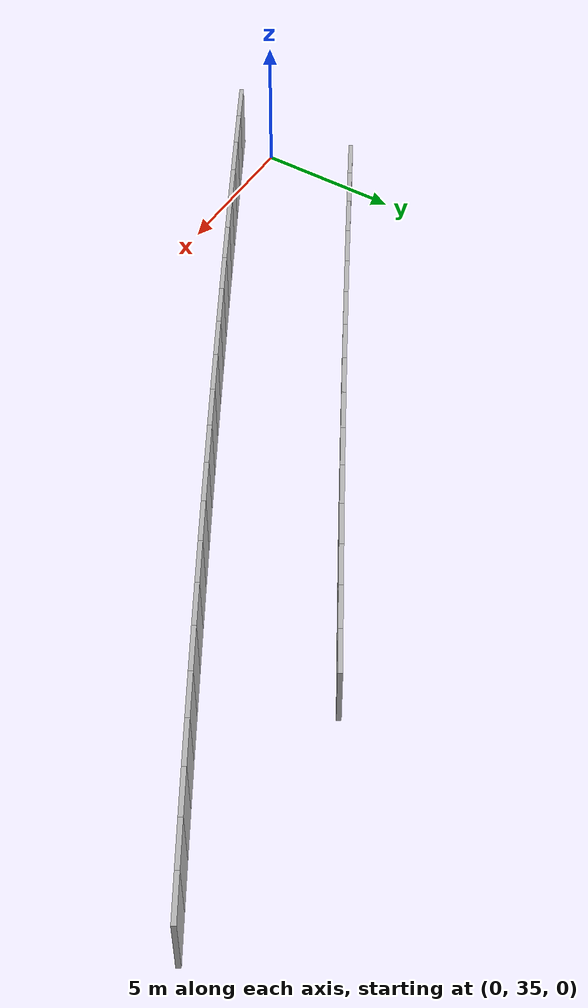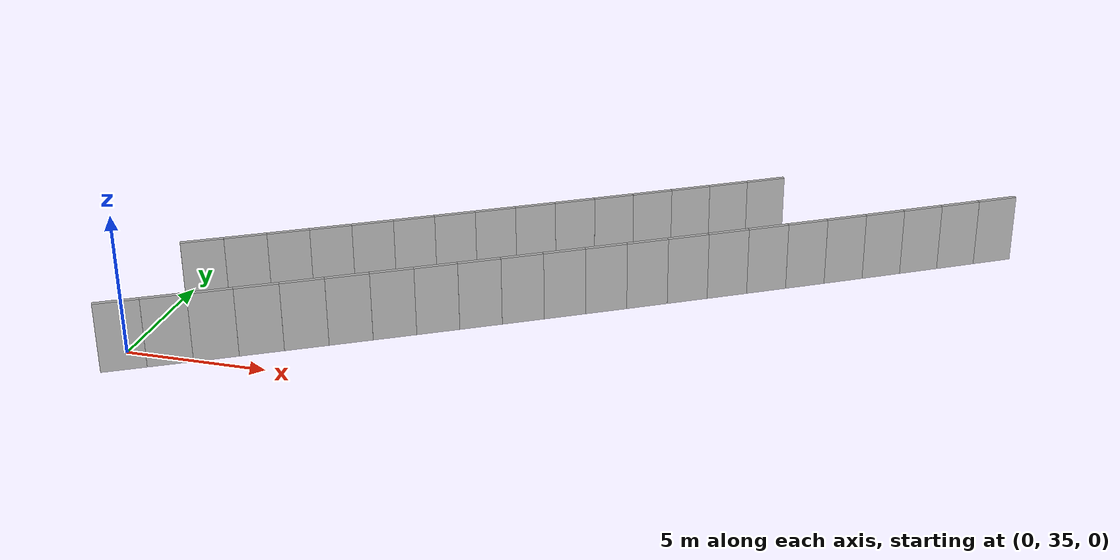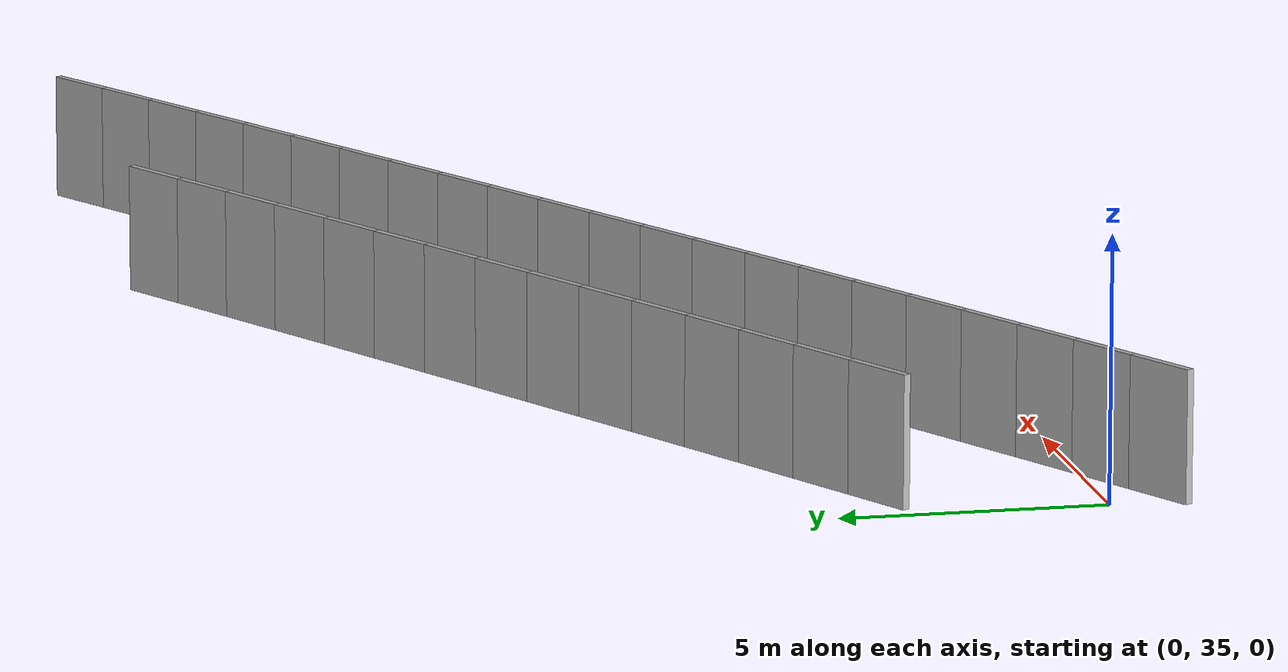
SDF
<?xml version="1.0" ?>
<sdf version="1.6">
  <model name="sps_3505">
    <pose frame="">0 0 0 0 -0 0</pose>
    <static>1</static>
    <self_collide>0</self_collide>
    <allow_auto_disable>0</allow_auto_disable>
    <link name="Wall3986">
      <kinematic>0</kinematic>
      <gravity>1</gravity>
      <self_collide>0</self_collide>
      <collision name="collision">
        <geometry>
          <box>
            <size>1.49667 0.15 2.5</size>
          </box>
        </geometry>
        <pose frame="">0 0 0 0 -0 0</pose>
      </collision>
      <visual name="visual">
        <geometry>
          <box>
            <size>1.49667 0.15 2.5</size>
          </box>
        </geometry>
        <pose frame="">0 0 0 0 -0 0</pose>
        <cast_shadows>1</cast_shadows>
        <transparency>0.0</transparency>
      </visual>
      <pose frame="">1.04174 39.0217 1.25 0 -0 0.509495</pose>
    </link>
    <link name="Wall3987">
      <kinematic>0</kinematic>
      <gravity>1</gravity>
      <self_collide>0</self_collide>
      <collision name="collision">
        <geometry>
          <box>
            <size>1.49648 0.15 2.5</size>
          </box>
        </geometry>
        <pose frame="">0 0 0 0 -0 0</pose>
      </collision>
      <visual name="visual">
        <geometry>
          <box>
            <size>1.49648 0.15 2.5</size>
          </box>
        </geometry>
        <pose frame="">0 0 0 0 -0 0</pose>
        <cast_shadows>1</cast_shadows>
        <transparency>0.0</transparency>
      </visual>
      <pose frame="">2.34765 39.7527 1.25 0 -0 0.511108</pose>
    </link>
    <link name="Wall3988">
      <kinematic>0</kinematic>
      <gravity>1</gravity>
      <self_collide>0</self_collide>
      <collision name="collision">
        <geometry>
          <box>
            <size>1.49656 0.15 2.5</size>
          </box>
        </geometry>
        <pose frame="">0 0 0 0 -0 0</pose>
      </collision>
      <visual name="visual">
        <geometry>
          <box>
            <size>1.49656 0.15 2.5</size>
          </box>
        </geometry>
        <pose frame="">0 0 0 0 -0 0</pose>
        <cast_shadows>1</cast_shadows>
        <transparency>0.0</transparency>
      </visual>
      <pose frame="">3.65237 40.4857 1.25 0 -0 0.512621</pose>
    </link>
    <link name="Wall3989">
      <kinematic>0</kinematic>
      <gravity>1</gravity>
      <self_collide>0</self_collide>
      <collision name="collision">
        <geometry>
          <box>
            <size>1.49658 0.15 2.5</size>
          </box>
        </geometry>
        <pose frame="">0 0 0 0 -0 0</pose>
      </collision>
      <visual name="visual">
        <geometry>
          <box>
            <size>1.49658 0.15 2.5</size>
          </box>
        </geometry>
        <pose frame="">0 0 0 0 -0 0</pose>
        <cast_shadows>1</cast_shadows>
        <transparency>0.0</transparency>
      </visual>
      <pose frame="">4.95595 41.2208 1.25 0 -0 0.5143</pose>
    </link>
    <link name="Wall3990">
      <kinematic>0</kinematic>
      <gravity>1</gravity>
      <self_collide>0</self_collide>
      <collision name="collision">
        <geometry>
          <box>
            <size>1.49656 0.15 2.5</size>
          </box>
        </geometry>
        <pose frame="">0 0 0 0 -0 0</pose>
      </collision>
      <visual name="visual">
        <geometry>
          <box>
            <size>1.49656 0.15 2.5</size>
          </box>
        </geometry>
        <pose frame="">0 0 0 0 -0 0</pose>
        <cast_shadows>1</cast_shadows>
        <transparency>0.0</transparency>
      </visual>
      <pose frame="">6.25835 41.958 1.25 0 -0 0.515853</pose>
    </link>
    <link name="Wall3991">
      <kinematic>0</kinematic>
      <gravity>1</gravity>
      <self_collide>0</self_collide>
      <collision name="collision">
        <geometry>
          <box>
            <size>1.49647 0.15 2.5</size>
          </box>
        </geometry>
        <pose frame="">0 0 0 0 -0 0</pose>
      </collision>
      <visual name="visual">
        <geometry>
          <box>
            <size>1.49647 0.15 2.5</size>
          </box>
        </geometry>
        <pose frame="">0 0 0 0 -0 0</pose>
        <cast_shadows>1</cast_shadows>
        <transparency>0.0</transparency>
      </visual>
      <pose frame="">7.55956 42.6972 1.25 0 -0 0.517391</pose>
    </link>
    <link name="Wall3992">
      <kinematic>0</kinematic>
      <gravity>1</gravity>
      <self_collide>0</self_collide>
      <collision name="collision">
        <geometry>
          <box>
            <size>1.49652 0.15 2.5</size>
          </box>
        </geometry>
        <pose frame="">0 0 0 0 -0 0</pose>
      </collision>
      <visual name="visual">
        <geometry>
          <box>
            <size>1.49652 0.15 2.5</size>
          </box>
        </geometry>
        <pose frame="">0 0 0 0 -0 0</pose>
        <cast_shadows>1</cast_shadows>
        <transparency>0.0</transparency>
      </visual>
      <pose frame="">8.85955 43.4385 1.25 0 -0 0.519106</pose>
    </link>
    <link name="Wall3993">
      <kinematic>0</kinematic>
      <gravity>1</gravity>
      <self_collide>0</self_collide>
      <collision name="collision">
        <geometry>
          <box>
            <size>1.49649 0.15 2.5</size>
          </box>
        </geometry>
        <pose frame="">0 0 0 0 -0 0</pose>
      </collision>
      <visual name="visual">
        <geometry>
          <box>
            <size>1.49649 0.15 2.5</size>
          </box>
        </geometry>
        <pose frame="">0 0 0 0 -0 0</pose>
        <cast_shadows>1</cast_shadows>
        <transparency>0.0</transparency>
      </visual>
      <pose frame="">10.1583 44.1819 1.25 0 -0 0.520623</pose>
    </link>
    <link name="Wall3994">
      <kinematic>0</kinematic>
      <gravity>1</gravity>
      <self_collide>0</self_collide>
      <collision name="collision">
        <geometry>
          <box>
            <size>1.49659 0.15 2.5</size>
          </box>
        </geometry>
        <pose frame="">0 0 0 0 -0 0</pose>
      </collision>
      <visual name="visual">
        <geometry>
          <box>
            <size>1.49659 0.15 2.5</size>
          </box>
        </geometry>
        <pose frame="">0 0 0 0 -0 0</pose>
        <cast_shadows>1</cast_shadows>
        <transparency>0.0</transparency>
      </visual>
      <pose frame="">11.456 44.9273 1.25 0 -0 0.522136</pose>
    </link>
    <link name="Wall3995">
      <kinematic>0</kinematic>
      <gravity>1</gravity>
      <self_collide>0</self_collide>
      <collision name="collision">
        <geometry>
          <box>
            <size>1.49659 0.15 2.5</size>
          </box>
        </geometry>
        <pose frame="">0 0 0 0 -0 0</pose>
      </collision>
      <visual name="visual">
        <geometry>
          <box>
            <size>1.49659 0.15 2.5</size>
          </box>
        </geometry>
        <pose frame="">0 0 0 0 -0 0</pose>
        <cast_shadows>1</cast_shadows>
        <transparency>0.0</transparency>
      </visual>
      <pose frame="">12.7526 45.6747 1.25 0 -0 0.523689</pose>
    </link>
    <link name="Wall3996">
      <kinematic>0</kinematic>
      <gravity>1</gravity>
      <self_collide>0</self_collide>
      <collision name="collision">
        <geometry>
          <box>
            <size>1.49648 0.15 2.5</size>
          </box>
        </geometry>
        <pose frame="">0 0 0 0 -0 0</pose>
      </collision>
      <visual name="visual">
        <geometry>
          <box>
            <size>1.49648 0.15 2.5</size>
          </box>
        </geometry>
        <pose frame="">0 0 0 0 -0 0</pose>
        <cast_shadows>1</cast_shadows>
        <transparency>0.0</transparency>
      </visual>
      <pose frame="">14.048 46.4242 1.25 0 -0 0.525429</pose>
    </link>
    <link name="Wall3997">
      <kinematic>0</kinematic>
      <gravity>1</gravity>
      <self_collide>0</self_collide>
      <collision name="collision">
        <geometry>
          <box>
            <size>1.4964 0.15 2.5</size>
          </box>
        </geometry>
        <pose frame="">0 0 0 0 -0 0</pose>
      </collision>
      <visual name="visual">
        <geometry>
          <box>
            <size>1.4964 0.15 2.5</size>
          </box>
        </geometry>
        <pose frame="">0 0 0 0 -0 0</pose>
        <cast_shadows>1</cast_shadows>
        <transparency>0.0</transparency>
      </visual>
      <pose frame="">15.342 47.1758 1.25 0 -0 0.526968</pose>
    </link>
    <link name="Wall3998">
      <kinematic>0</kinematic>
      <gravity>1</gravity>
      <self_collide>0</self_collide>
      <collision name="collision">
        <geometry>
          <box>
            <size>1.49643 0.15 2.5</size>
          </box>
        </geometry>
        <pose frame="">0 0 0 0 -0 0</pose>
      </collision>
      <visual name="visual">
        <geometry>
          <box>
            <size>1.49643 0.15 2.5</size>
          </box>
        </geometry>
        <pose frame="">0 0 0 0 -0 0</pose>
        <cast_shadows>1</cast_shadows>
        <transparency>0.0</transparency>
      </visual>
      <pose frame="">16.6348 47.9293 1.25 0 -0 0.528374</pose>
    </link>
    <link name="Wall3999">
      <kinematic>0</kinematic>
      <gravity>1</gravity>
      <self_collide>0</self_collide>
      <collision name="collision">
        <geometry>
          <box>
            <size>1.49666 0.15 2.5</size>
          </box>
        </geometry>
        <pose frame="">0 0 0 0 -0 0</pose>
      </collision>
      <visual name="visual">
        <geometry>
          <box>
            <size>1.49666 0.15 2.5</size>
          </box>
        </geometry>
        <pose frame="">0 0 0 0 -0 0</pose>
        <cast_shadows>1</cast_shadows>
        <transparency>0.0</transparency>
      </visual>
      <pose frame="">17.9266 48.6849 1.25 0 -0 0.530173</pose>
    </link>
    <link name="Wall4000">
      <kinematic>0</kinematic>
      <gravity>1</gravity>
      <self_collide>0</self_collide>
      <collision name="collision">
        <geometry>
          <box>
            <size>1.49656 0.15 2.5</size>
          </box>
        </geometry>
        <pose frame="">0 0 0 0 -0 0</pose>
      </collision>
      <visual name="visual">
        <geometry>
          <box>
            <size>1.49656 0.15 2.5</size>
          </box>
        </geometry>
        <pose frame="">0 0 0 0 -0 0</pose>
        <cast_shadows>1</cast_shadows>
        <transparency>0.0</transparency>
      </visual>
      <pose frame="">19.2172 49.4426 1.25 0 -0 0.531586</pose>
    </link>
    <link name="Wall7759">
      <kinematic>0</kinematic>
      <gravity>1</gravity>
      <self_collide>0</self_collide>
      <collision name="collision">
        <geometry>
          <box>
            <size>1.50302 0.15 2.5</size>
          </box>
        </geometry>
        <pose frame="">0 0 0 0 -0 0</pose>
      </collision>
      <visual name="visual">
        <geometry>
          <box>
            <size>1.50302 0.15 2.5</size>
          </box>
        </geometry>
        <pose frame="">0 0 0 0 -0 0</pose>
        <cast_shadows>1</cast_shadows>
        <transparency>0.0</transparency>
      </visual>
      <pose frame="">0.436271 33.9458 1.25 0 -0 0.506392</pose>
    </link>
    <link name="Wall7760">
      <kinematic>0</kinematic>
      <gravity>1</gravity>
      <self_collide>0</self_collide>
      <collision name="collision">
        <geometry>
          <box>
            <size>1.50302 0.15 2.5</size>
          </box>
        </geometry>
        <pose frame="">0 0 0 0 -0 0</pose>
      </collision>
      <visual name="visual">
        <geometry>
          <box>
            <size>1.50302 0.15 2.5</size>
          </box>
        </geometry>
        <pose frame="">0 0 0 0 -0 0</pose>
        <cast_shadows>1</cast_shadows>
        <transparency>0.0</transparency>
      </visual>
      <pose frame="">1.75005 34.6759 1.25 0 -0 0.508065</pose>
    </link>
    <link name="Wall7761">
      <kinematic>0</kinematic>
      <gravity>1</gravity>
      <self_collide>0</self_collide>
      <collision name="collision">
        <geometry>
          <box>
            <size>1.50312 0.15 2.5</size>
          </box>
        </geometry>
        <pose frame="">0 0 0 0 -0 0</pose>
      </collision>
      <visual name="visual">
        <geometry>
          <box>
            <size>1.50312 0.15 2.5</size>
          </box>
        </geometry>
        <pose frame="">0 0 0 0 -0 0</pose>
        <cast_shadows>1</cast_shadows>
        <transparency>0.0</transparency>
      </visual>
      <pose frame="">3.06274 35.4081 1.25 0 -0 0.509516</pose>
    </link>
    <link name="Wall7762">
      <kinematic>0</kinematic>
      <gravity>1</gravity>
      <self_collide>0</self_collide>
      <collision name="collision">
        <geometry>
          <box>
            <size>1.50312 0.15 2.5</size>
          </box>
        </geometry>
        <pose frame="">0 0 0 0 -0 0</pose>
      </collision>
      <visual name="visual">
        <geometry>
          <box>
            <size>1.50312 0.15 2.5</size>
          </box>
        </geometry>
        <pose frame="">0 0 0 0 -0 0</pose>
        <cast_shadows>1</cast_shadows>
        <transparency>0.0</transparency>
      </visual>
      <pose frame="">4.37435 36.1423 1.25 0 -0 0.511098</pose>
    </link>
    <link name="Wall7763">
      <kinematic>0</kinematic>
      <gravity>1</gravity>
      <self_collide>0</self_collide>
      <collision name="collision">
        <geometry>
          <box>
            <size>1.50317 0.15 2.5</size>
          </box>
        </geometry>
        <pose frame="">0 0 0 0 -0 0</pose>
      </collision>
      <visual name="visual">
        <geometry>
          <box>
            <size>1.50317 0.15 2.5</size>
          </box>
        </geometry>
        <pose frame="">0 0 0 0 -0 0</pose>
        <cast_shadows>1</cast_shadows>
        <transparency>0.0</transparency>
      </visual>
      <pose frame="">5.68487 36.8785 1.25 0 -0 0.512569</pose>
    </link>
    <link name="Wall7764">
      <kinematic>0</kinematic>
      <gravity>1</gravity>
      <self_collide>0</self_collide>
      <collision name="collision">
        <geometry>
          <box>
            <size>1.50303 0.15 2.5</size>
          </box>
        </geometry>
        <pose frame="">0 0 0 0 -0 0</pose>
      </collision>
      <visual name="visual">
        <geometry>
          <box>
            <size>1.50303 0.15 2.5</size>
          </box>
        </geometry>
        <pose frame="">0 0 0 0 -0 0</pose>
        <cast_shadows>1</cast_shadows>
        <transparency>0.0</transparency>
      </visual>
      <pose frame="">6.99416 37.6168 1.25 0 -0 0.514301</pose>
    </link>
    <link name="Wall7765">
      <kinematic>0</kinematic>
      <gravity>1</gravity>
      <self_collide>0</self_collide>
      <collision name="collision">
        <geometry>
          <box>
            <size>1.50299 0.15 2.5</size>
          </box>
        </geometry>
        <pose frame="">0 0 0 0 -0 0</pose>
      </collision>
      <visual name="visual">
        <geometry>
          <box>
            <size>1.50299 0.15 2.5</size>
          </box>
        </geometry>
        <pose frame="">0 0 0 0 -0 0</pose>
        <cast_shadows>1</cast_shadows>
        <transparency>0.0</transparency>
      </visual>
      <pose frame="">8.30215 38.3572 1.25 0 -0 0.515902</pose>
    </link>
    <link name="Wall7766">
      <kinematic>0</kinematic>
      <gravity>1</gravity>
      <self_collide>0</self_collide>
      <collision name="collision">
        <geometry>
          <box>
            <size>1.50308 0.15 2.5</size>
          </box>
        </geometry>
        <pose frame="">0 0 0 0 -0 0</pose>
      </collision>
      <visual name="visual">
        <geometry>
          <box>
            <size>1.50308 0.15 2.5</size>
          </box>
        </geometry>
        <pose frame="">0 0 0 0 -0 0</pose>
        <cast_shadows>1</cast_shadows>
        <transparency>0.0</transparency>
      </visual>
      <pose frame="">9.60903 39.0996 1.25 0 -0 0.517318</pose>
    </link>
    <link name="Wall7767">
      <kinematic>0</kinematic>
      <gravity>1</gravity>
      <self_collide>0</self_collide>
      <collision name="collision">
        <geometry>
          <box>
            <size>1.50319 0.15 2.5</size>
          </box>
        </geometry>
        <pose frame="">0 0 0 0 -0 0</pose>
      </collision>
      <visual name="visual">
        <geometry>
          <box>
            <size>1.50319 0.15 2.5</size>
          </box>
        </geometry>
        <pose frame="">0 0 0 0 -0 0</pose>
        <cast_shadows>1</cast_shadows>
        <transparency>0.0</transparency>
      </visual>
      <pose frame="">10.9148 39.8441 1.25 0 -0 0.519005</pose>
    </link>
    <link name="Wall7768">
      <kinematic>0</kinematic>
      <gravity>1</gravity>
      <self_collide>0</self_collide>
      <collision name="collision">
        <geometry>
          <box>
            <size>1.50292 0.15 2.5</size>
          </box>
        </geometry>
        <pose frame="">0 0 0 0 -0 0</pose>
      </collision>
      <visual name="visual">
        <geometry>
          <box>
            <size>1.50292 0.15 2.5</size>
          </box>
        </geometry>
        <pose frame="">0 0 0 0 -0 0</pose>
        <cast_shadows>1</cast_shadows>
        <transparency>0.0</transparency>
      </visual>
      <pose frame="">12.2194 40.5907 1.25 0 -0 0.520652</pose>
    </link>
    <link name="Wall7769">
      <kinematic>0</kinematic>
      <gravity>1</gravity>
      <self_collide>0</self_collide>
      <collision name="collision">
        <geometry>
          <box>
            <size>1.50316 0.15 2.5</size>
          </box>
        </geometry>
        <pose frame="">0 0 0 0 -0 0</pose>
      </collision>
      <visual name="visual">
        <geometry>
          <box>
            <size>1.50316 0.15 2.5</size>
          </box>
        </geometry>
        <pose frame="">0 0 0 0 -0 0</pose>
        <cast_shadows>1</cast_shadows>
        <transparency>0.0</transparency>
      </visual>
      <pose frame="">13.5226 41.3394 1.25 0 -0 0.522243</pose>
    </link>
    <link name="Wall7770">
      <kinematic>0</kinematic>
      <gravity>1</gravity>
      <self_collide>0</self_collide>
      <collision name="collision">
        <geometry>
          <box>
            <size>1.50313 0.15 2.5</size>
          </box>
        </geometry>
        <pose frame="">0 0 0 0 -0 0</pose>
      </collision>
      <visual name="visual">
        <geometry>
          <box>
            <size>1.50313 0.15 2.5</size>
          </box>
        </geometry>
        <pose frame="">0 0 0 0 -0 0</pose>
        <cast_shadows>1</cast_shadows>
        <transparency>0.0</transparency>
      </visual>
      <pose frame="">14.8249 42.0902 1.25 0 -0 0.523754</pose>
    </link>
    <link name="Wall7771">
      <kinematic>0</kinematic>
      <gravity>1</gravity>
      <self_collide>0</self_collide>
      <collision name="collision">
        <geometry>
          <box>
            <size>1.50309 0.15 2.5</size>
          </box>
        </geometry>
        <pose frame="">0 0 0 0 -0 0</pose>
      </collision>
      <visual name="visual">
        <geometry>
          <box>
            <size>1.50309 0.15 2.5</size>
          </box>
        </geometry>
        <pose frame="">0 0 0 0 -0 0</pose>
        <cast_shadows>1</cast_shadows>
        <transparency>0.0</transparency>
      </visual>
      <pose frame="">16.1259 42.843 1.25 0 -0 0.525321</pose>
    </link>
    <link name="Wall7772">
      <kinematic>0</kinematic>
      <gravity>1</gravity>
      <self_collide>0</self_collide>
      <collision name="collision">
        <geometry>
          <box>
            <size>1.50323 0.15 2.5</size>
          </box>
        </geometry>
        <pose frame="">0 0 0 0 -0 0</pose>
      </collision>
      <visual name="visual">
        <geometry>
          <box>
            <size>1.50323 0.15 2.5</size>
          </box>
        </geometry>
        <pose frame="">0 0 0 0 -0 0</pose>
        <cast_shadows>1</cast_shadows>
        <transparency>0.0</transparency>
      </visual>
      <pose frame="">17.4258 43.5978 1.25 0 -0 0.526862</pose>
    </link>
    <link name="Wall7773">
      <kinematic>0</kinematic>
      <gravity>1</gravity>
      <self_collide>0</self_collide>
      <collision name="collision">
        <geometry>
          <box>
            <size>1.50309 0.15 2.5</size>
          </box>
        </geometry>
        <pose frame="">0 0 0 0 -0 0</pose>
      </collision>
      <visual name="visual">
        <geometry>
          <box>
            <size>1.50309 0.15 2.5</size>
          </box>
        </geometry>
        <pose frame="">0 0 0 0 -0 0</pose>
        <cast_shadows>1</cast_shadows>
        <transparency>0.0</transparency>
      </visual>
      <pose frame="">18.7244 44.3547 1.25 0 -0 0.52856</pose>
    </link>
    <link name="Wall7774">
      <kinematic>0</kinematic>
      <gravity>1</gravity>
      <self_collide>0</self_collide>
      <collision name="collision">
        <geometry>
          <box>
            <size>1.50308 0.15 2.5</size>
          </box>
        </geometry>
        <pose frame="">0 0 0 0 -0 0</pose>
      </collision>
      <visual name="visual">
        <geometry>
          <box>
            <size>1.50308 0.15 2.5</size>
          </box>
        </geometry>
        <pose frame="">0 0 0 0 -0 0</pose>
        <cast_shadows>1</cast_shadows>
        <transparency>0.0</transparency>
      </visual>
      <pose frame="">20.0218 45.1137 1.25 0 -0 0.530071</pose>
    </link>
    <link name="Wall7775">
      <kinematic>0</kinematic>
      <gravity>1</gravity>
      <self_collide>0</self_collide>
      <collision name="collision">
        <geometry>
          <box>
            <size>1.50308 0.15 2.5</size>
          </box>
        </geometry>
        <pose frame="">0 0 0 0 -0 0</pose>
      </collision>
      <visual name="visual">
        <geometry>
          <box>
            <size>1.50308 0.15 2.5</size>
          </box>
        </geometry>
        <pose frame="">0 0 0 0 -0 0</pose>
        <cast_shadows>1</cast_shadows>
        <transparency>0.0</transparency>
      </visual>
      <pose frame="">21.318 45.8747 1.25 0 -0 0.531673</pose>
    </link>
    <link name="Wall7776">
      <kinematic>0</kinematic>
      <gravity>1</gravity>
      <self_collide>0</self_collide>
      <collision name="collision">
        <geometry>
          <box>
            <size>1.50307 0.15 2.5</size>
          </box>
        </geometry>
        <pose frame="">0 0 0 0 -0 0</pose>
      </collision>
      <visual name="visual">
        <geometry>
          <box>
            <size>1.50307 0.15 2.5</size>
          </box>
        </geometry>
        <pose frame="">0 0 0 0 -0 0</pose>
        <cast_shadows>1</cast_shadows>
        <transparency>0.0</transparency>
      </visual>
      <pose frame="">22.6131 46.6377 1.25 0 -0 0.533184</pose>
    </link>
    <link name="Wall7777">
      <kinematic>0</kinematic>
      <gravity>1</gravity>
      <self_collide>0</self_collide>
      <collision name="collision">
        <geometry>
          <box>
            <size>1.50312 0.15 2.5</size>
          </box>
        </geometry>
        <pose frame="">0 0 0 0 -0 0</pose>
      </collision>
      <visual name="visual">
        <geometry>
          <box>
            <size>1.50312 0.15 2.5</size>
          </box>
        </geometry>
        <pose frame="">0 0 0 0 -0 0</pose>
        <cast_shadows>1</cast_shadows>
        <transparency>0.0</transparency>
      </visual>
      <pose frame="">23.9069 47.4028 1.25 0 -0 0.534911</pose>
    </link>
    <link name="Wall7778">
      <kinematic>0</kinematic>
      <gravity>1</gravity>
      <self_collide>0</self_collide>
      <collision name="collision">
        <geometry>
          <box>
            <size>1.50296 0.15 2.5</size>
          </box>
        </geometry>
        <pose frame="">0 0 0 0 -0 0</pose>
      </collision>
      <visual name="visual">
        <geometry>
          <box>
            <size>1.50296 0.15 2.5</size>
          </box>
        </geometry>
        <pose frame="">0 0 0 0 -0 0</pose>
        <cast_shadows>1</cast_shadows>
        <transparency>0.0</transparency>
      </visual>
      <pose frame="">25.1993 48.17 1.25 0 -0 0.536485</pose>
    </link>
    <link name="Wall7779">
      <kinematic>0</kinematic>
      <gravity>1</gravity>
      <self_collide>0</self_collide>
      <collision name="collision">
        <geometry>
          <box>
            <size>1.50324 0.15 2.5</size>
          </box>
        </geometry>
        <pose frame="">0 0 0 0 -0 0</pose>
      </collision>
      <visual name="visual">
        <geometry>
          <box>
            <size>1.50324 0.15 2.5</size>
          </box>
        </geometry>
        <pose frame="">0 0 0 0 -0 0</pose>
        <cast_shadows>1</cast_shadows>
        <transparency>0.0</transparency>
      </visual>
      <pose frame="">26.4907 48.9393 1.25 0 -0 0.538073</pose>
    </link>
    <link name="Wall7780">
      <kinematic>0</kinematic>
      <gravity>1</gravity>
      <self_collide>0</self_collide>
      <collision name="collision">
        <geometry>
          <box>
            <size>1.50293 0.15 2.5</size>
          </box>
        </geometry>
        <pose frame="">0 0 0 0 -0 0</pose>
      </collision>
      <visual name="visual">
        <geometry>
          <box>
            <size>1.50293 0.15 2.5</size>
          </box>
        </geometry>
        <pose frame="">0 0 0 0 -0 0</pose>
        <cast_shadows>1</cast_shadows>
        <transparency>0.0</transparency>
      </visual>
      <pose frame="">27.7808 49.7106 1.25 0 -0 0.539619</pose>
    </link>
  </model>
</sdf>
